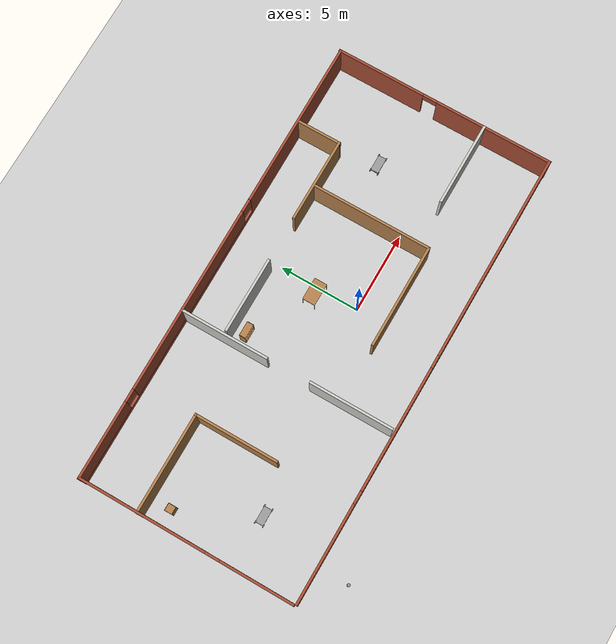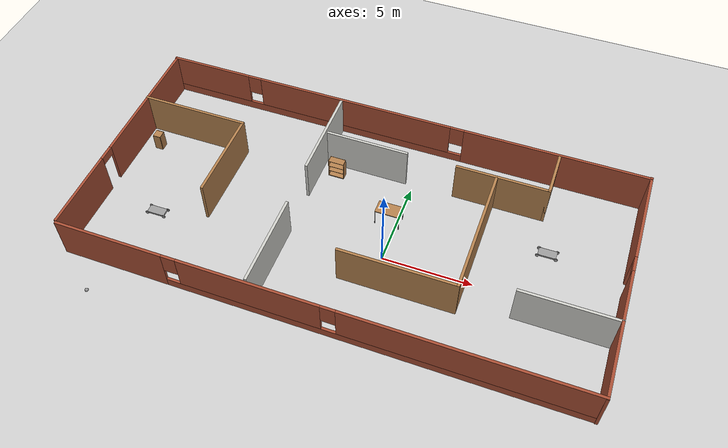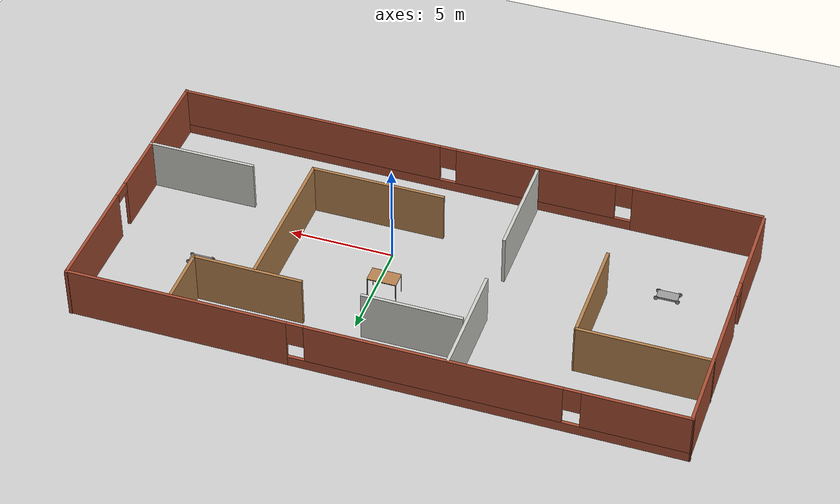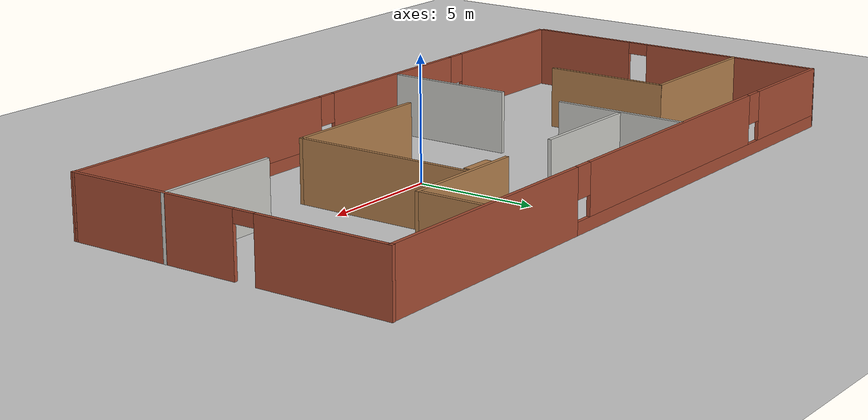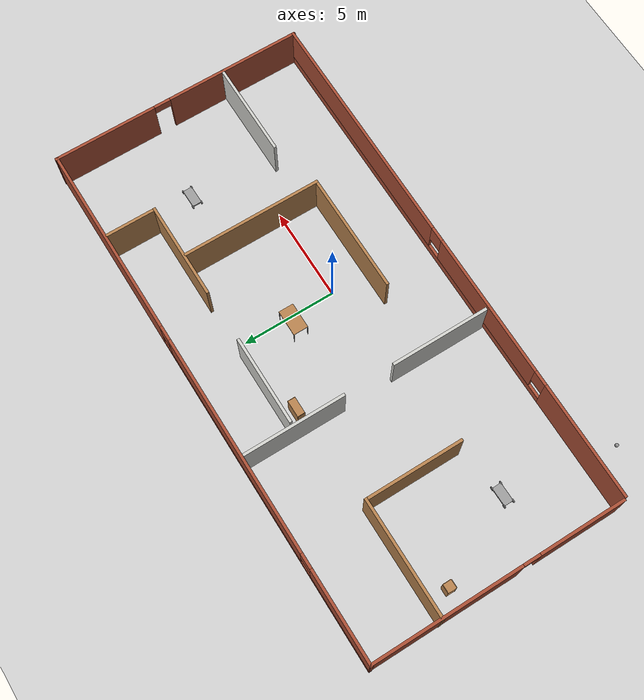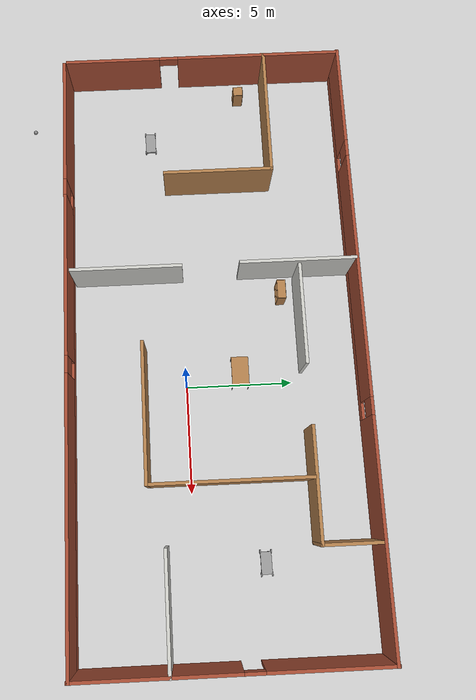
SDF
<sdf version="1.6">
 <world name="default">
  <plugin name="welcome_message" filename="./libwelcome_message.so"/>
  <light name="sun" type="directional">
   <pose>0 0 10 0 -0 0</pose>
   <diffuse>0.8 0.8 0.8 1</diffuse>
   <specular>0.1 0.1 0.1 1</specular>
   <attenuation>
    <range>1000</range>
    <constant>0.9</constant>
    <linear>0.01</linear>
    <quadratic>0.001</quadratic>
   </attenuation>
   <direction>-0.5 0.5 -1</direction>
  </light>
  <model name="ground_plane">
   <static>1</static>
   <link name="link">
    <collision name="collision">
     <geometry><plane><normal>0 0 1</normal><size>100 100</size></plane></geometry>
     <surface><friction><ode><mu>100</mu><mu2>50</mu2></ode></friction></surface>
    </collision>
    <visual name="visual">
     <cast_shadows>0</cast_shadows>
     <geometry><plane><normal>0 0 1</normal><size>100 100</size></plane></geometry>
     <material>
      <script><uri>file://media/materials/scripts/gazebo.material</uri><name>Gazebo/Grey</name></script>
     </material>
    </visual>
   </link>
  </model>
  <gravity>0 0 -9.8</gravity>
  <magnetic_field>6e-06 2.3e-05 -4.2e-05</magnetic_field>
  <atmosphere type="adiabatic"/>
  <physics name="default_physics" default="0" type="ode">
   <max_step_size>0.001</max_step_size>
   <real_time_factor>1</real_time_factor>
   <real_time_update_rate>1000</real_time_update_rate>
  </physics>
  <scene><ambient>0.4 0.4 0.4 1</ambient><background>0.7 0.7 0.7 1</background><shadows>1</shadows></scene>
  <spherical_coordinates>
   <surface_model>EARTH_WGS84</surface_model>
   <latitude_deg>0</latitude_deg>
   <longitude_deg>0</longitude_deg>
   <elevation>0</elevation>
   <heading_deg>0</heading_deg>
  </spherical_coordinates>
  <model name="wall2">
   <pose>-1.83862 1.41721 0 0 -0 0</pose>
   <link name="Wall_0">
    <pose>0.0701 -6.80102 0 0 0 -0.002151</pose>
    <visual name="Wall_0_Visual_0">
     <pose>-11.2183 0 1.25 0 -0 0</pose>
     <geometry><box><size>6.15515 0.15 2.5</size></box></geometry>
     <material>
      <script><uri>file://media/materials/scripts/gazebo.material</uri><name>Gazebo/Bricks</name></script>
      <ambient>1 1 1 1</ambient>
     </material>
    </visual>
    <collision name="Wall_0_Collision_0">
     <geometry><box><size>6.15515 0.15 2.5</size></box></geometry>
     <pose>-11.2183 0 1.25 0 -0 0</pose>
    </collision>
    <visual name="Wall_0_Visual_1">
     <pose>3.07757 0 0.25 0 -0 0</pose>
     <geometry><box><size>22.4367 0.15 0.5</size></box></geometry>
     <material>
      <script><uri>file://media/materials/scripts/gazebo.material</uri><name>Gazebo/Bricks</name></script>
      <ambient>1 1 1 1</ambient>
     </material>
    </visual>
    <collision name="Wall_0_Collision_1">
     <geometry><box><size>22.4367 0.15 0.5</size></box></geometry>
     <pose>3.07757 0 0.25 0 -0 0</pose>
    </collision>
    <visual name="Wall_0_Visual_2">
     <pose>-3.44996 0 1.5 0 -0 0</pose>
     <geometry><box><size>7.78163 0.15 2</size></box></geometry>
     <material>
      <script><uri>file://media/materials/scripts/gazebo.material</uri><name>Gazebo/Bricks</name></script>
      <ambient>1 1 1 1</ambient>
     </material>
    </visual>
    <collision name="Wall_0_Collision_2">
     <geometry><box><size>7.78163 0.15 2</size></box></geometry>
     <pose>-3.44996 0 1.5 0 -0 0</pose>
    </collision>
    <visual name="Wall_0_Visual_3">
     <pose>7.76839 0 1.5 0 -0 0</pose>
     <geometry><box><size>13.0551 0.15 2</size></box></geometry>
     <material>
      <script><uri>file://media/materials/scripts/gazebo.material</uri><name>Gazebo/Bricks</name></script>
      <ambient>1 1 1 1</ambient>
     </material>
    </visual>
    <collision name="Wall_0_Collision_3">
     <geometry><box><size>13.0551 0.15 2</size></box></geometry>
     <pose>7.76839 0 1.5 0 -0 0</pose>
    </collision>
    <visual name="Wall_0_Visual_4">
     <pose>-7.74077 0 1.9 0 -0 0</pose>
     <geometry><box><size>0.8 0.15 1.2</size></box></geometry>
     <material>
      <script><uri>file://media/materials/scripts/gazebo.material</uri><name>Gazebo/Bricks</name></script>
      <ambient>1 1 1 1</ambient>
     </material>
    </visual>
    <collision name="Wall_0_Collision_4">
     <geometry><box><size>0.8 0.15 1.2</size></box></geometry>
     <pose>-7.74077 0 1.9 0 -0 0</pose>
    </collision>
    <visual name="Wall_0_Visual_5">
     <pose>0.840861 0 1.9 0 -0 0</pose>
     <geometry><box><size>0.8 0.15 1.2</size></box></geometry>
     <material>
      <script><uri>file://media/materials/scripts/gazebo.material</uri><name>Gazebo/Bricks</name></script>
      <ambient>1 1 1 1</ambient>
     </material>
    </visual>
    <collision name="Wall_0_Collision_5">
     <geometry><box><size>0.8 0.15 1.2</size></box></geometry>
     <pose>0.840861 0 1.9 0 -0 0</pose>
    </collision>
   </link>
   <link name="Wall_1">
    <pose>14.2757 0 0 0 -0 1.57302</pose>
    <visual name="Wall_1_Visual_0">
     <pose>-3.24103 0 1.25 0 -0 0</pose>
     <geometry><box><size>7.39238 0.15 2.5</size></box></geometry>
     <material>
      <script><uri>file://media/materials/scripts/gazebo.material</uri><name>Gazebo/Bricks</name></script>
      <ambient>1 1 1 1</ambient>
     </material>
    </visual>
    <collision name="Wall_1_Collision_0">
     <geometry><box><size>7.39238 0.15 2.5</size></box></geometry>
     <pose>-3.24103 0 1.25 0 -0 0</pose>
    </collision>
    <visual name="Wall_1_Visual_1">
     <pose>4.14619 0 1.25 0 -0 0</pose>
     <geometry><box><size>5.58206 0.15 2.5</size></box></geometry>
     <material>
      <script><uri>file://media/materials/scripts/gazebo.material</uri><name>Gazebo/Bricks</name></script>
      <ambient>1 1 1 1</ambient>
     </material>
    </visual>
    <collision name="Wall_1_Collision_1">
     <geometry><box><size>5.58206 0.15 2.5</size></box></geometry>
     <pose>4.14619 0 1.25 0 -0 0</pose>
    </collision>
    <visual name="Wall_1_Visual_2">
     <pose>0.905161 0 2.25 0 -0 0</pose>
     <geometry><box><size>0.9 0.15 0.5</size></box></geometry>
     <material>
      <script><uri>file://media/materials/scripts/gazebo.material</uri><name>Gazebo/Bricks</name></script>
      <ambient>1 1 1 1</ambient>
     </material>
    </visual>
    <collision name="Wall_1_Collision_2">
     <geometry><box><size>0.9 0.15 0.5</size></box></geometry>
     <pose>0.905161 0 2.25 0 -0 0</pose>
    </collision>
   </link>
   <link name="Wall_10">
    <collision name="Wall_10_Collision">
     <geometry><box><size>5.25 0.15 2.5</size></box></geometry>
     <pose>0 0 1.25 0 -0 0</pose>
    </collision>
    <visual name="Wall_10_Visual">
     <pose>0 0 1.25 0 -0 0</pose>
     <geometry><box><size>5.25 0.15 2.5</size></box></geometry>
     <material>
      <script><uri>file://media/materials/scripts/gazebo.material</uri><name>Gazebo/CeilingTiled</name></script>
      <ambient>1 0.764706 0.305882 1</ambient>
     </material>
    </visual>
    <pose>-3.51097 -4.01292 0 0 0 -1.5708</pose>
   </link>
   <link name="Wall_12">
    <collision name="Wall_12_Collision">
     <geometry><box><size>4.75 0.15 2.5</size></box></geometry>
     <pose>0 0 1.25 0 -0 0</pose>
    </collision>
    <visual name="Wall_12_Visual">
     <pose>0 0 1.25 0 -0 0</pose>
     <geometry><box><size>4.75 0.15 2.5</size></box></geometry>
     <material>
      <script><uri>file://media/materials/scripts/gazebo.material</uri><name>Gazebo/CeilingTiled</name></script>
      <ambient>1 1 1 1</ambient>
     </material>
    </visual>
    <pose>-0.999901 4.06014 0 0 -0 0</pose>
   </link>
   <link name="Wall_14">
    <collision name="Wall_14_Collision">
     <geometry><box><size>5.25 0.15 2.5</size></box></geometry>
     <pose>0 0 1.25 0 -0 0</pose>
    </collision>
    <visual name="Wall_14_Visual">
     <pose>0 0 1.25 0 -0 0</pose>
     <geometry><box><size>5.25 0.15 2.5</size></box></geometry>
     <material>
      <script><uri>file://media/materials/scripts/gazebo.material</uri><name>Gazebo/Wood</name></script>
      <ambient>1 1 1 1</ambient>
     </material>
    </visual>
    <pose>6.74318 4.09532 0 0 -0 0</pose>
   </link>
   <link name="Wall_16">
    <collision name="Wall_16_Collision">
     <geometry><box><size>2.75 0.15 2.5</size></box></geometry>
     <pose>0 0 1.25 0 -0 0</pose>
    </collision>
    <visual name="Wall_16_Visual">
     <pose>0 0 1.25 0 -0 0</pose>
     <geometry><box><size>2.75 0.15 2.5</size></box></geometry>
     <material>
      <script><uri>file://media/materials/scripts/gazebo.material</uri><name>Gazebo/Wood</name></script>
      <ambient>1 1 1 1</ambient>
     </material>
    </visual>
    <pose>9.29317 5.39532 0 0 -0 1.5708</pose>
   </link>
   <link name="Wall_18">
    <collision name="Wall_18_Collision">
     <geometry><box><size>7.5 0.15 2.5</size></box></geometry>
     <pose>0 0 1.25 0 -0 0</pose>
    </collision>
    <visual name="Wall_18_Visual">
     <pose>0 0 1.25 0 -0 0</pose>
     <geometry><box><size>7.5 0.15 2.5</size></box></geometry>
     <material>
      <script><uri>file://media/materials/scripts/gazebo.material</uri><name>Gazebo/Wood</name></script>
      <ambient>1 1 1 1</ambient>
     </material>
    </visual>
    <pose>6.40944 0.314786 0 0 0 -1.5708</pose>
   </link>
   <link name="Wall_2">
    <pose>-0.015256 6.78573 0 0 0 -3.13838</pose>
    <visual name="Wall_2_Visual_0">
     <pose>-9.09297 0 1.25 0 -0 0</pose>
     <geometry><box><size>10.5155 0.15 2.5</size></box></geometry>
     <material>
      <script><uri>file://media/materials/scripts/gazebo.material</uri><name>Gazebo/Bricks</name></script>
      <ambient>1 1 1 1</ambient>
     </material>
    </visual>
    <collision name="Wall_2_Collision_0">
     <geometry><box><size>10.5155 0.15 2.5</size></box></geometry>
     <pose>-9.09297 0 1.25 0 -0 0</pose>
    </collision>
    <visual name="Wall_2_Visual_1">
     <pose>5.25776 0 0.25 0 -0 0</pose>
     <geometry><box><size>18.1859 0.15 0.5</size></box></geometry>
     <material>
      <script><uri>file://media/materials/scripts/gazebo.material</uri><name>Gazebo/Bricks</name></script>
      <ambient>1 1 1 1</ambient>
     </material>
    </visual>
    <collision name="Wall_2_Collision_1">
     <geometry><box><size>18.1859 0.15 0.5</size></box></geometry>
     <pose>5.25776 0 0.25 0 -0 0</pose>
    </collision>
    <visual name="Wall_2_Visual_2">
     <pose>2.81619 0 1.5 0 -0 0</pose>
     <geometry><box><size>11.7028 0.15 2</size></box></geometry>
     <material>
      <script><uri>file://media/materials/scripts/gazebo.material</uri><name>Gazebo/Bricks</name></script>
      <ambient>1 1 1 1</ambient>
     </material>
    </visual>
    <collision name="Wall_2_Collision_2">
     <geometry><box><size>11.7028 0.15 2</size></box></geometry>
     <pose>2.81619 0 1.5 0 -0 0</pose>
    </collision>
    <visual name="Wall_2_Visual_3">
     <pose>11.9092 0 1.5 0 -0 0</pose>
     <geometry><box><size>4.88314 0.15 2</size></box></geometry>
     <material>
      <script><uri>file://media/materials/scripts/gazebo.material</uri><name>Gazebo/Bricks</name></script>
      <ambient>1 1 1 1</ambient>
     </material>
    </visual>
    <collision name="Wall_2_Collision_3">
     <geometry><box><size>4.88314 0.15 2</size></box></geometry>
     <pose>11.9092 0 1.5 0 -0 0</pose>
    </collision>
    <visual name="Wall_2_Visual_4">
     <pose>-3.43521 0 1.9 0 -0 0</pose>
     <geometry><box><size>0.8 0.15 1.2</size></box></geometry>
     <material>
      <script><uri>file://media/materials/scripts/gazebo.material</uri><name>Gazebo/Bricks</name></script>
      <ambient>1 1 1 1</ambient>
     </material>
    </visual>
    <collision name="Wall_2_Collision_4">
     <geometry><box><size>0.8 0.15 1.2</size></box></geometry>
     <pose>-3.43521 0 1.9 0 -0 0</pose>
    </collision>
    <visual name="Wall_2_Visual_5">
     <pose>9.06759 0 1.9 0 -0 0</pose>
     <geometry><box><size>0.8 0.15 1.2</size></box></geometry>
     <material>
      <script><uri>file://media/materials/scripts/gazebo.material</uri><name>Gazebo/Bricks</name></script>
      <ambient>1 1 1 1</ambient>
     </material>
    </visual>
    <collision name="Wall_2_Collision_5">
     <geometry><box><size>0.8 0.15 1.2</size></box></geometry>
     <pose>9.06759 0 1.9 0 -0 0</pose>
    </collision>
   </link>
   <link name="Wall_20">
    <collision name="Wall_20_Collision">
     <geometry><box><size>6.5 0.15 2.5</size></box></geometry>
     <pose>0 0 1.25 0 -0 0</pose>
    </collision>
    <visual name="Wall_20_Visual">
     <pose>0 0 1.25 0 -0 0</pose>
     <geometry><box><size>6.5 0.15 2.5</size></box></geometry>
     <material>
      <script><uri>file://media/materials/scripts/gazebo.material</uri><name>Gazebo/Wood</name></script>
      <ambient>1 1 1 1</ambient>
     </material>
    </visual>
    <pose>3.23444 -3.36021 0 0 -0 3.14159</pose>
   </link>
   <link name="Wall_22">
    <collision name="Wall_22_Collision">
     <geometry><box><size>5.25 0.15 2.5</size></box></geometry>
     <pose>0 0 1.25 0 -0 0</pose>
    </collision>
    <visual name="Wall_22_Visual">
     <pose>0 0 1.25 0 -0 0</pose>
     <geometry><box><size>5.25 0.15 2.5</size></box></geometry>
     <material>
      <script><uri>file://media/materials/scripts/gazebo.material</uri><name>Gazebo/CeilingTiled</name></script>
      <ambient>1 1 1 1</ambient>
     </material>
    </visual>
    <pose>11.7395 -2.62382 0 0 -0 3.14159</pose>
   </link>
   <link name="Wall_3">
    <pose>-14.2603 0.06484 0 0 0 -1.5708</pose>
    <visual name="Wall_3_Visual_0">
     <pose>-2.75484 0 1.25 0 -0 0</pose>
     <geometry><box><size>7.99032 0.15 2.5</size></box></geometry>
     <material>
      <script><uri>file://media/materials/scripts/gazebo.material</uri><name>Gazebo/Bricks</name></script>
      <ambient>1 1 1 1</ambient>
     </material>
    </visual>
    <collision name="Wall_3_Collision_0">
     <geometry><box><size>7.99032 0.15 2.5</size></box></geometry>
     <pose>-2.75484 0 1.25 0 -0 0</pose>
    </collision>
    <visual name="Wall_3_Visual_1">
     <pose>4.44516 0 1.25 0 -0 0</pose>
     <geometry><box><size>4.60968 0.15 2.5</size></box></geometry>
     <material>
      <script><uri>file://media/materials/scripts/gazebo.material</uri><name>Gazebo/Bricks</name></script>
      <ambient>1 1 1 1</ambient>
     </material>
    </visual>
    <collision name="Wall_3_Collision_1">
     <geometry><box><size>4.60968 0.15 2.5</size></box></geometry>
     <pose>4.44516 0 1.25 0 -0 0</pose>
    </collision>
    <visual name="Wall_3_Visual_2">
     <pose>1.69032 0 2.25 0 -0 0</pose>
     <geometry><box><size>0.9 0.15 0.5</size></box></geometry>
     <material>
      <script><uri>file://media/materials/scripts/gazebo.material</uri><name>Gazebo/Bricks</name></script>
      <ambient>1 1 1 1</ambient>
     </material>
    </visual>
    <collision name="Wall_3_Collision_2">
     <geometry><box><size>0.9 0.15 0.5</size></box></geometry>
     <pose>1.69032 0 2.25 0 -0 0</pose>
    </collision>
   </link>
   <link name="Wall_5">
    <collision name="Wall_5_Collision">
     <geometry><box><size>6.25 0.15 2.5</size></box></geometry>
     <pose>0 0 1.25 0 -0 0</pose>
    </collision>
    <visual name="Wall_5_Visual">
     <pose>0 0 1.25 0 -0 0</pose>
     <geometry><box><size>6.25 0.15 2.5</size></box></geometry>
     <material>
      <script><uri>file://media/materials/scripts/gazebo.material</uri><name>Gazebo/Wood</name></script>
      <ambient>0.435294 0.796078 0.67451 1</ambient>
     </material>
    </visual>
    <pose>-11.2257 3.07514 0 0 -0 0</pose>
   </link>
   <link name="Wall_6">
    <collision name="Wall_6_Collision">
     <geometry><box><size>5.25 0.15 2.5</size></box></geometry>
     <pose>0 0 1.25 0 -0 0</pose>
    </collision>
    <visual name="Wall_6_Visual">
     <pose>0 0 1.25 0 -0 0</pose>
     <geometry><box><size>5.25 0.15 2.5</size></box></geometry>
     <material>
      <script><uri>file://media/materials/scripts/gazebo.material</uri><name>Gazebo/Wood</name></script>
      <ambient>0.435294 0.796078 0.67451 1</ambient>
     </material>
    </visual>
    <pose>-8.17568 0.525138 0 0 0 -1.5708</pose>
   </link>
   <link name="Wall_8">
    <collision name="Wall_8_Collision">
     <geometry><box><size>5.5 0.15 2.5</size></box></geometry>
     <pose>0 0 1.25 0 -0 0</pose>
    </collision>
    <visual name="Wall_8_Visual">
     <pose>0 0 1.25 0 -0 0</pose>
     <geometry><box><size>5.5 0.15 2.5</size></box></geometry>
     <material>
      <script><uri>file://media/materials/scripts/gazebo.material</uri><name>Gazebo/CeilingTiled</name></script>
      <ambient>1 1 1 1</ambient>
     </material>
    </visual>
    <pose>-3.54615 4.02355 0 0 0 -1.5708</pose>
   </link>
   <static>1</static>
  </model>
  <model name="robot2">
   <pose>-12.7775 -1.32703 0.100002 0 -0 0.011114</pose>
   <static>0</static>
   <link name="link_0">
    <pose>0 0 0.025 0 -0 0</pose>
    <inertial>
     <mass>5</mass>
     <inertia>
      <ixx>0.147117</ixx>
      <ixy>0</ixy>
      <ixz>0</ixz>
      <iyy>0.334951</iyy>
      <iyz>0</iyz>
      <izz>0.397834</izz>
     </inertia>
     <pose>0 0 0.025 0 -0 0</pose>
    </inertial>
    <visual name="visual">
     <geometry><box><size>1 0.5 0.1</size></box></geometry>
     <material>
      <lighting>1</lighting>
      <script><uri>file://media/materials/scripts/gazebo.material</uri><name>Gazebo/Grey</name></script>
      <ambient>0.3 0.3 0.3 1</ambient>
      <diffuse>0.7 0.7 0.7 1</diffuse>
      <specular>0.01 0.01 0.01 1</specular>
      <emissive>0 0 0 1</emissive>
      <shader type="vertex"><normal_map>__default__</normal_map></shader>
     </material>
    </visual>
    <collision name="collision">
     <geometry><box><size>1 0.5 0.1</size></box></geometry>
     <surface>
      <friction>
       <ode><mu>1</mu><mu2>1</mu2><fdir1>0 0 0</fdir1><slip1>0</slip1><slip2>0</slip2></ode>
       <torsional>
        <coefficient>1</coefficient>
        <patch_radius>0</patch_radius>
        <surface_radius>0</surface_radius>
        <use_patch_radius>1</use_patch_radius>
        <ode><slip>0</slip></ode>
       </torsional>
      </friction>
      <bounce><restitution_coefficient>0</restitution_coefficient><threshold>1e+06</threshold></bounce>
      <contact>
       <collide_without_contact>0</collide_without_contact>
       <collide_without_contact_bitmask>1</collide_without_contact_bitmask>
       <collide_bitmask>1</collide_bitmask>
       <ode>
        <soft_cfm>0</soft_cfm>
        <soft_erp>0.2</soft_erp>
        <kp>1e+13</kp>
        <kd>1</kd>
        <max_vel>0.01</max_vel>
        <min_depth>0</min_depth>
       </ode>
       <bullet>
        <split_impulse>1</split_impulse>
        <split_impulse_penetration_threshold>-0.01</split_impulse_penetration_threshold>
        <soft_cfm>0</soft_cfm>
        <soft_erp>0.2</soft_erp>
        <kp>1e+13</kp>
        <kd>1</kd>
       </bullet>
      </contact>
     </surface>
    </collision>
   </link>
   <link name="link_1">
    <pose>0.5 -0.25 0 1.5707 -0 0</pose>
    <inertial>
     <mass>0.2</mass>
     <inertia>
      <ixx>0.00524062</ixx>
      <iyy>0.00524062</iyy>
      <izz>0.009075</izz>
      <ixy>0</ixy>
      <ixz>0</ixz>
      <iyz>0</iyz>
     </inertia>
     <pose>0.5 -0.25 0 1.5707 -0 0</pose>
    </inertial>
    <visual name="visual">
     <geometry><cylinder><radius>0.1</radius><length>0.05</length></cylinder></geometry>
     <material>
      <lighting>1</lighting>
      <script><uri>file://media/materials/scripts/gazebo.material</uri><name>Gazebo/Grey</name></script>
      <ambient>0.3 0.3 0.3 1</ambient>
      <diffuse>0.7 0.7 0.7 1</diffuse>
      <specular>0.01 0.01 0.01 1</specular>
      <emissive>0 0 0 1</emissive>
      <shader type="vertex"><normal_map>__default__</normal_map></shader>
     </material>
    </visual>
    <collision name="collision">
     <geometry><cylinder><radius>0.1</radius><length>0.05</length></cylinder></geometry>
     <surface>
      <friction>
       <ode><mu>1</mu><mu2>1</mu2><fdir1>0 0 0</fdir1><slip1>0</slip1><slip2>0</slip2></ode>
       <torsional>
        <coefficient>1</coefficient>
        <patch_radius>0</patch_radius>
        <surface_radius>0</surface_radius>
        <use_patch_radius>1</use_patch_radius>
        <ode><slip>0</slip></ode>
       </torsional>
      </friction>
      <bounce><restitution_coefficient>0</restitution_coefficient><threshold>1e+06</threshold></bounce>
      <contact>
       <collide_without_contact>0</collide_without_contact>
       <collide_without_contact_bitmask>1</collide_without_contact_bitmask>
       <collide_bitmask>1</collide_bitmask>
       <ode>
        <soft_cfm>0</soft_cfm>
        <soft_erp>0.2</soft_erp>
        <kp>1e+13</kp>
        <kd>1</kd>
        <max_vel>0.01</max_vel>
        <min_depth>0</min_depth>
       </ode>
       <bullet>
        <split_impulse>1</split_impulse>
        <split_impulse_penetration_threshold>-0.01</split_impulse_penetration_threshold>
        <soft_cfm>0</soft_cfm>
        <soft_erp>0.2</soft_erp>
        <kp>1e+13</kp>
        <kd>1</kd>
       </bullet>
      </contact>
     </surface>
    </collision>
   </link>
   <link name="link_1_clone">
    <pose>0.5 0.25 0 1.5707 -0 0</pose>
    <inertial>
     <mass>0.2</mass>
     <inertia>
      <ixx>0.00524062</ixx>
      <iyy>0.00524062</iyy>
      <izz>0.009075</izz>
      <ixy>0</ixy>
      <ixz>0</ixz>
      <iyz>0</iyz>
     </inertia>
     <pose>0.5 0.25 0 1.5707 -0 0</pose>
    </inertial>
    <visual name="visual">
     <geometry><cylinder><radius>0.1</radius><length>0.05</length></cylinder></geometry>
     <material>
      <lighting>1</lighting>
      <script><uri>file://media/materials/scripts/gazebo.material</uri><name>Gazebo/Grey</name></script>
      <ambient>0.3 0.3 0.3 1</ambient>
      <diffuse>0.7 0.7 0.7 1</diffuse>
      <specular>0.01 0.01 0.01 1</specular>
      <emissive>0 0 0 1</emissive>
      <shader type="vertex"><normal_map>__default__</normal_map></shader>
     </material>
    </visual>
    <collision name="collision">
     <geometry><cylinder><radius>0.1</radius><length>0.05</length></cylinder></geometry>
     <surface>
      <friction>
       <ode><mu>1</mu><mu2>1</mu2><fdir1>0 0 0</fdir1><slip1>0</slip1><slip2>0</slip2></ode>
       <torsional>
        <coefficient>1</coefficient>
        <patch_radius>0</patch_radius>
        <surface_radius>0</surface_radius>
        <use_patch_radius>1</use_patch_radius>
        <ode><slip>0</slip></ode>
       </torsional>
      </friction>
      <bounce><restitution_coefficient>0</restitution_coefficient><threshold>1e+06</threshold></bounce>
      <contact>
       <collide_without_contact>0</collide_without_contact>
       <collide_without_contact_bitmask>1</collide_without_contact_bitmask>
       <collide_bitmask>1</collide_bitmask>
       <ode>
        <soft_cfm>0</soft_cfm>
        <soft_erp>0.2</soft_erp>
        <kp>1e+13</kp>
        <kd>1</kd>
        <max_vel>0.01</max_vel>
        <min_depth>0</min_depth>
       </ode>
       <bullet>
        <split_impulse>1</split_impulse>
        <split_impulse_penetration_threshold>-0.01</split_impulse_penetration_threshold>
        <soft_cfm>0</soft_cfm>
        <soft_erp>0.2</soft_erp>
        <kp>1e+13</kp>
        <kd>1</kd>
       </bullet>
      </contact>
     </surface>
    </collision>
   </link>
   <link name="link_2">
    <pose>-0.5 -0.25 0 1.5707 -0 0</pose>
    <inertial>
     <mass>0.2</mass>
     <inertia>
      <ixx>0.00524062</ixx>
      <iyy>0.00524062</iyy>
      <izz>0.009075</izz>
      <ixy>0</ixy>
      <ixz>0</ixz>
      <iyz>0</iyz>
     </inertia>
     <pose>-0.5 -0.25 0 1.5707 -0 0</pose>
    </inertial>
    <visual name="visual">
     <geometry><cylinder><radius>0.1</radius><length>0.05</length></cylinder></geometry>
     <material>
      <lighting>1</lighting>
      <script><uri>file://media/materials/scripts/gazebo.material</uri><name>Gazebo/Grey</name></script>
      <ambient>0.3 0.3 0.3 1</ambient>
      <diffuse>0.7 0.7 0.7 1</diffuse>
      <specular>0.01 0.01 0.01 1</specular>
      <emissive>0 0 0 1</emissive>
      <shader type="vertex"><normal_map>__default__</normal_map></shader>
     </material>
    </visual>
    <collision name="collision">
     <geometry><cylinder><radius>0.1</radius><length>0.05</length></cylinder></geometry>
     <surface>
      <friction>
       <ode><mu>1</mu><mu2>1</mu2><fdir1>0 0 0</fdir1><slip1>0</slip1><slip2>0</slip2></ode>
       <torsional>
        <coefficient>1</coefficient>
        <patch_radius>0</patch_radius>
        <surface_radius>0</surface_radius>
        <use_patch_radius>1</use_patch_radius>
        <ode><slip>0</slip></ode>
       </torsional>
      </friction>
      <bounce><restitution_coefficient>0</restitution_coefficient><threshold>1e+06</threshold></bounce>
      <contact>
       <collide_without_contact>0</collide_without_contact>
       <collide_without_contact_bitmask>1</collide_without_contact_bitmask>
       <collide_bitmask>1</collide_bitmask>
       <ode>
        <soft_cfm>0</soft_cfm>
        <soft_erp>0.2</soft_erp>
        <kp>1e+13</kp>
        <kd>1</kd>
        <max_vel>0.01</max_vel>
        <min_depth>0</min_depth>
       </ode>
       <bullet>
        <split_impulse>1</split_impulse>
        <split_impulse_penetration_threshold>-0.01</split_impulse_penetration_threshold>
        <soft_cfm>0</soft_cfm>
        <soft_erp>0.2</soft_erp>
        <kp>1e+13</kp>
        <kd>1</kd>
       </bullet>
      </contact>
     </surface>
    </collision>
   </link>
   <link name="link_2_clone">
    <pose>-0.5 0.25 0 1.5707 -0 0</pose>
    <inertial>
     <mass>0.2</mass>
     <inertia>
      <ixx>0.00524062</ixx>
      <iyy>0.00524062</iyy>
      <izz>0.009075</izz>
      <ixy>0</ixy>
      <ixz>0</ixz>
      <iyz>0</iyz>
     </inertia>
     <pose>-0.5 0.25 0 1.5707 -0 0</pose>
    </inertial>
    <visual name="visual">
     <geometry><cylinder><radius>0.1</radius><length>0.05</length></cylinder></geometry>
     <material>
      <lighting>1</lighting>
      <script><uri>file://media/materials/scripts/gazebo.material</uri><name>Gazebo/Grey</name></script>
      <ambient>0.3 0.3 0.3 1</ambient>
      <diffuse>0.7 0.7 0.7 1</diffuse>
      <specular>0.01 0.01 0.01 1</specular>
      <emissive>0 0 0 1</emissive>
      <shader type="vertex"><normal_map>__default__</normal_map></shader>
     </material>
    </visual>
    <collision name="collision">
     <geometry><cylinder><radius>0.1</radius><length>0.05</length></cylinder></geometry>
     <surface>
      <friction>
       <ode><mu>1</mu><mu2>1</mu2><fdir1>0 0 0</fdir1><slip1>0</slip1><slip2>0</slip2></ode>
       <torsional>
        <coefficient>1</coefficient>
        <patch_radius>0</patch_radius>
        <surface_radius>0</surface_radius>
        <use_patch_radius>1</use_patch_radius>
        <ode><slip>0</slip></ode>
       </torsional>
      </friction>
      <bounce><restitution_coefficient>0</restitution_coefficient><threshold>1e+06</threshold></bounce>
      <contact>
       <collide_without_contact>0</collide_without_contact>
       <collide_without_contact_bitmask>1</collide_without_contact_bitmask>
       <collide_bitmask>1</collide_bitmask>
       <ode>
        <soft_cfm>0</soft_cfm>
        <soft_erp>0.2</soft_erp>
        <kp>1e+13</kp>
        <kd>1</kd>
        <max_vel>0.01</max_vel>
        <min_depth>0</min_depth>
       </ode>
       <bullet>
        <split_impulse>1</split_impulse>
        <split_impulse_penetration_threshold>-0.01</split_impulse_penetration_threshold>
        <soft_cfm>0</soft_cfm>
        <soft_erp>0.2</soft_erp>
        <kp>1e+13</kp>
        <kd>1</kd>
       </bullet>
      </contact>
     </surface>
    </collision>
   </link>
   <joint name="link_0_JOINT_0" type="revolute">
    <parent>link_0</parent>
    <child>link_1</child>
    <axis>
     <xyz>0 1 0</xyz>
     <use_parent_model_frame>1</use_parent_model_frame>
     <limit>
      <lower>-1.79769e+308</lower>
      <upper>1.79769e+308</upper>
      <effort>-1</effort>
      <velocity>-1</velocity>
     </limit>
     <dynamics>
      <spring_reference>0</spring_reference>
      <spring_stiffness>0</spring_stiffness>
      <damping>0</damping>
     </dynamics>
    </axis>
    <physics>
     <ode><limit><cfm>0</cfm><erp>0.2</erp></limit><suspension><cfm>0</cfm><erp>0.2</erp></suspension></ode>
    </physics>
   </joint>
   <joint name="link_0_JOINT_1" type="revolute">
    <parent>link_0</parent>
    <child>link_1_clone</child>
    <axis>
     <xyz>0 1 0</xyz>
     <use_parent_model_frame>1</use_parent_model_frame>
     <limit>
      <lower>-1.79769e+308</lower>
      <upper>1.79769e+308</upper>
      <effort>-1</effort>
      <velocity>-1</velocity>
     </limit>
     <dynamics>
      <spring_reference>0</spring_reference>
      <spring_stiffness>0</spring_stiffness>
      <damping>0</damping>
     </dynamics>
    </axis>
    <physics>
     <ode><limit><cfm>0</cfm><erp>0.2</erp></limit><suspension><cfm>0</cfm><erp>0.2</erp></suspension></ode>
    </physics>
   </joint>
   <joint name="link_0_JOINT_2" type="revolute">
    <parent>link_0</parent>
    <child>link_2</child>
    <axis>
     <xyz>0 1 0</xyz>
     <use_parent_model_frame>1</use_parent_model_frame>
     <limit>
      <lower>-1.79769e+308</lower>
      <upper>1.79769e+308</upper>
      <effort>-1</effort>
      <velocity>-1</velocity>
     </limit>
     <dynamics>
      <spring_reference>0</spring_reference>
      <spring_stiffness>0</spring_stiffness>
      <damping>0</damping>
     </dynamics>
    </axis>
    <physics>
     <ode><limit><cfm>0</cfm><erp>0.2</erp></limit><suspension><cfm>0</cfm><erp>0.2</erp></suspension></ode>
    </physics>
   </joint>
   <joint name="link_0_JOINT_3" type="revolute">
    <parent>link_0</parent>
    <child>link_2_clone</child>
    <axis>
     <xyz>0 1 0</xyz>
     <use_parent_model_frame>1</use_parent_model_frame>
     <limit>
      <lower>-1.79769e+308</lower>
      <upper>1.79769e+308</upper>
      <effort>-1</effort>
      <velocity>-1</velocity>
     </limit>
     <dynamics>
      <spring_reference>0</spring_reference>
      <spring_stiffness>0</spring_stiffness>
      <damping>0</damping>
     </dynamics>
    </axis>
    <physics>
     <ode><limit><cfm>0</cfm><erp>0.2</erp></limit><suspension><cfm>0</cfm><erp>0.2</erp></suspension></ode>
    </physics>
   </joint>
   <static>0</static>
  </model>
  <model name="robot2_0">
   <pose>8.23339 3.2576 0.100001 0 -0 0.010744</pose>
   <static>0</static>
   <link name="link_0">
    <pose>0 0 0.025 0 -0 0</pose>
    <inertial>
     <mass>5</mass>
     <inertia>
      <ixx>0.147117</ixx>
      <ixy>0</ixy>
      <ixz>0</ixz>
      <iyy>0.334951</iyy>
      <iyz>0</iyz>
      <izz>0.397834</izz>
     </inertia>
     <pose>0 0 0.025 0 -0 0</pose>
    </inertial>
    <visual name="visual">
     <geometry><box><size>1 0.5 0.1</size></box></geometry>
     <material>
      <lighting>1</lighting>
      <script><uri>file://media/materials/scripts/gazebo.material</uri><name>Gazebo/Grey</name></script>
      <ambient>0.3 0.3 0.3 1</ambient>
      <diffuse>0.7 0.7 0.7 1</diffuse>
      <specular>0.01 0.01 0.01 1</specular>
      <emissive>0 0 0 1</emissive>
      <shader type="vertex"><normal_map>__default__</normal_map></shader>
     </material>
    </visual>
    <collision name="collision">
     <geometry><box><size>1 0.5 0.1</size></box></geometry>
     <surface>
      <friction>
       <ode><mu>1</mu><mu2>1</mu2><fdir1>0 0 0</fdir1><slip1>0</slip1><slip2>0</slip2></ode>
       <torsional>
        <coefficient>1</coefficient>
        <patch_radius>0</patch_radius>
        <surface_radius>0</surface_radius>
        <use_patch_radius>1</use_patch_radius>
        <ode><slip>0</slip></ode>
       </torsional>
      </friction>
      <bounce><restitution_coefficient>0</restitution_coefficient><threshold>1e+06</threshold></bounce>
      <contact>
       <collide_without_contact>0</collide_without_contact>
       <collide_without_contact_bitmask>1</collide_without_contact_bitmask>
       <collide_bitmask>1</collide_bitmask>
       <ode>
        <soft_cfm>0</soft_cfm>
        <soft_erp>0.2</soft_erp>
        <kp>1e+13</kp>
        <kd>1</kd>
        <max_vel>0.01</max_vel>
        <min_depth>0</min_depth>
       </ode>
       <bullet>
        <split_impulse>1</split_impulse>
        <split_impulse_penetration_threshold>-0.01</split_impulse_penetration_threshold>
        <soft_cfm>0</soft_cfm>
        <soft_erp>0.2</soft_erp>
        <kp>1e+13</kp>
        <kd>1</kd>
       </bullet>
      </contact>
     </surface>
    </collision>
   </link>
   <link name="link_1">
    <pose>0.5 -0.25 0 1.5707 -0 0</pose>
    <inertial>
     <mass>0.2</mass>
     <inertia>
      <ixx>0.00524062</ixx>
      <iyy>0.00524062</iyy>
      <izz>0.009075</izz>
      <ixy>0</ixy>
      <ixz>0</ixz>
      <iyz>0</iyz>
     </inertia>
     <pose>0.5 -0.25 0 1.5707 -0 0</pose>
    </inertial>
    <visual name="visual">
     <geometry><cylinder><radius>0.1</radius><length>0.05</length></cylinder></geometry>
     <material>
      <lighting>1</lighting>
      <script><uri>file://media/materials/scripts/gazebo.material</uri><name>Gazebo/Grey</name></script>
      <ambient>0.3 0.3 0.3 1</ambient>
      <diffuse>0.7 0.7 0.7 1</diffuse>
      <specular>0.01 0.01 0.01 1</specular>
      <emissive>0 0 0 1</emissive>
      <shader type="vertex"><normal_map>__default__</normal_map></shader>
     </material>
    </visual>
    <collision name="collision">
     <geometry><cylinder><radius>0.1</radius><length>0.05</length></cylinder></geometry>
     <surface>
      <friction>
       <ode><mu>1</mu><mu2>1</mu2><fdir1>0 0 0</fdir1><slip1>0</slip1><slip2>0</slip2></ode>
       <torsional>
        <coefficient>1</coefficient>
        <patch_radius>0</patch_radius>
        <surface_radius>0</surface_radius>
        <use_patch_radius>1</use_patch_radius>
        <ode><slip>0</slip></ode>
       </torsional>
      </friction>
      <bounce><restitution_coefficient>0</restitution_coefficient><threshold>1e+06</threshold></bounce>
      <contact>
       <collide_without_contact>0</collide_without_contact>
       <collide_without_contact_bitmask>1</collide_without_contact_bitmask>
       <collide_bitmask>1</collide_bitmask>
       <ode>
        <soft_cfm>0</soft_cfm>
        <soft_erp>0.2</soft_erp>
        <kp>1e+13</kp>
        <kd>1</kd>
        <max_vel>0.01</max_vel>
        <min_depth>0</min_depth>
       </ode>
       <bullet>
        <split_impulse>1</split_impulse>
        <split_impulse_penetration_threshold>-0.01</split_impulse_penetration_threshold>
        <soft_cfm>0</soft_cfm>
        <soft_erp>0.2</soft_erp>
        <kp>1e+13</kp>
        <kd>1</kd>
       </bullet>
      </contact>
     </surface>
    </collision>
   </link>
   <link name="link_1_clone">
    <pose>0.5 0.25 0 1.5707 -0 0</pose>
    <inertial>
     <mass>0.2</mass>
     <inertia>
      <ixx>0.00524062</ixx>
      <iyy>0.00524062</iyy>
      <izz>0.009075</izz>
      <ixy>0</ixy>
      <ixz>0</ixz>
      <iyz>0</iyz>
     </inertia>
     <pose>0.5 0.25 0 1.5707 -0 0</pose>
    </inertial>
    <visual name="visual">
     <geometry><cylinder><radius>0.1</radius><length>0.05</length></cylinder></geometry>
     <material>
      <lighting>1</lighting>
      <script><uri>file://media/materials/scripts/gazebo.material</uri><name>Gazebo/Grey</name></script>
      <ambient>0.3 0.3 0.3 1</ambient>
      <diffuse>0.7 0.7 0.7 1</diffuse>
      <specular>0.01 0.01 0.01 1</specular>
      <emissive>0 0 0 1</emissive>
      <shader type="vertex"><normal_map>__default__</normal_map></shader>
     </material>
    </visual>
    <collision name="collision">
     <geometry><cylinder><radius>0.1</radius><length>0.05</length></cylinder></geometry>
     <surface>
      <friction>
       <ode><mu>1</mu><mu2>1</mu2><fdir1>0 0 0</fdir1><slip1>0</slip1><slip2>0</slip2></ode>
       <torsional>
        <coefficient>1</coefficient>
        <patch_radius>0</patch_radius>
        <surface_radius>0</surface_radius>
        <use_patch_radius>1</use_patch_radius>
        <ode><slip>0</slip></ode>
       </torsional>
      </friction>
      <bounce><restitution_coefficient>0</restitution_coefficient><threshold>1e+06</threshold></bounce>
      <contact>
       <collide_without_contact>0</collide_without_contact>
       <collide_without_contact_bitmask>1</collide_without_contact_bitmask>
       <collide_bitmask>1</collide_bitmask>
       <ode>
        <soft_cfm>0</soft_cfm>
        <soft_erp>0.2</soft_erp>
        <kp>1e+13</kp>
        <kd>1</kd>
        <max_vel>0.01</max_vel>
        <min_depth>0</min_depth>
       </ode>
       <bullet>
        <split_impulse>1</split_impulse>
        <split_impulse_penetration_threshold>-0.01</split_impulse_penetration_threshold>
        <soft_cfm>0</soft_cfm>
        <soft_erp>0.2</soft_erp>
        <kp>1e+13</kp>
        <kd>1</kd>
       </bullet>
      </contact>
     </surface>
    </collision>
   </link>
   <link name="link_2">
    <pose>-0.5 -0.25 0 1.5707 -0 0</pose>
    <inertial>
     <mass>0.2</mass>
     <inertia>
      <ixx>0.00524062</ixx>
      <iyy>0.00524062</iyy>
      <izz>0.009075</izz>
      <ixy>0</ixy>
      <ixz>0</ixz>
      <iyz>0</iyz>
     </inertia>
     <pose>-0.5 -0.25 0 1.5707 -0 0</pose>
    </inertial>
    <visual name="visual">
     <geometry><cylinder><radius>0.1</radius><length>0.05</length></cylinder></geometry>
     <material>
      <lighting>1</lighting>
      <script><uri>file://media/materials/scripts/gazebo.material</uri><name>Gazebo/Grey</name></script>
      <ambient>0.3 0.3 0.3 1</ambient>
      <diffuse>0.7 0.7 0.7 1</diffuse>
      <specular>0.01 0.01 0.01 1</specular>
      <emissive>0 0 0 1</emissive>
      <shader type="vertex"><normal_map>__default__</normal_map></shader>
     </material>
    </visual>
    <collision name="collision">
     <geometry><cylinder><radius>0.1</radius><length>0.05</length></cylinder></geometry>
     <surface>
      <friction>
       <ode><mu>1</mu><mu2>1</mu2><fdir1>0 0 0</fdir1><slip1>0</slip1><slip2>0</slip2></ode>
       <torsional>
        <coefficient>1</coefficient>
        <patch_radius>0</patch_radius>
        <surface_radius>0</surface_radius>
        <use_patch_radius>1</use_patch_radius>
        <ode><slip>0</slip></ode>
       </torsional>
      </friction>
      <bounce><restitution_coefficient>0</restitution_coefficient><threshold>1e+06</threshold></bounce>
      <contact>
       <collide_without_contact>0</collide_without_contact>
       <collide_without_contact_bitmask>1</collide_without_contact_bitmask>
       <collide_bitmask>1</collide_bitmask>
       <ode>
        <soft_cfm>0</soft_cfm>
        <soft_erp>0.2</soft_erp>
        <kp>1e+13</kp>
        <kd>1</kd>
        <max_vel>0.01</max_vel>
        <min_depth>0</min_depth>
       </ode>
       <bullet>
        <split_impulse>1</split_impulse>
        <split_impulse_penetration_threshold>-0.01</split_impulse_penetration_threshold>
        <soft_cfm>0</soft_cfm>
        <soft_erp>0.2</soft_erp>
        <kp>1e+13</kp>
        <kd>1</kd>
       </bullet>
      </contact>
     </surface>
    </collision>
   </link>
   <link name="link_2_clone">
    <pose>-0.5 0.25 0 1.5707 -0 0</pose>
    <inertial>
     <mass>0.2</mass>
     <inertia>
      <ixx>0.00524062</ixx>
      <iyy>0.00524062</iyy>
      <izz>0.009075</izz>
      <ixy>0</ixy>
      <ixz>0</ixz>
      <iyz>0</iyz>
     </inertia>
     <pose>-0.5 0.25 0 1.5707 -0 0</pose>
    </inertial>
    <visual name="visual">
     <geometry><cylinder><radius>0.1</radius><length>0.05</length></cylinder></geometry>
     <material>
      <lighting>1</lighting>
      <script><uri>file://media/materials/scripts/gazebo.material</uri><name>Gazebo/Grey</name></script>
      <ambient>0.3 0.3 0.3 1</ambient>
      <diffuse>0.7 0.7 0.7 1</diffuse>
      <specular>0.01 0.01 0.01 1</specular>
      <emissive>0 0 0 1</emissive>
      <shader type="vertex"><normal_map>__default__</normal_map></shader>
     </material>
    </visual>
    <collision name="collision">
     <geometry><cylinder><radius>0.1</radius><length>0.05</length></cylinder></geometry>
     <surface>
      <friction>
       <ode><mu>1</mu><mu2>1</mu2><fdir1>0 0 0</fdir1><slip1>0</slip1><slip2>0</slip2></ode>
       <torsional>
        <coefficient>1</coefficient>
        <patch_radius>0</patch_radius>
        <surface_radius>0</surface_radius>
        <use_patch_radius>1</use_patch_radius>
        <ode><slip>0</slip></ode>
       </torsional>
      </friction>
      <bounce><restitution_coefficient>0</restitution_coefficient><threshold>1e+06</threshold></bounce>
      <contact>
       <collide_without_contact>0</collide_without_contact>
       <collide_without_contact_bitmask>1</collide_without_contact_bitmask>
       <collide_bitmask>1</collide_bitmask>
       <ode>
        <soft_cfm>0</soft_cfm>
        <soft_erp>0.2</soft_erp>
        <kp>1e+13</kp>
        <kd>1</kd>
        <max_vel>0.01</max_vel>
        <min_depth>0</min_depth>
       </ode>
       <bullet>
        <split_impulse>1</split_impulse>
        <split_impulse_penetration_threshold>-0.01</split_impulse_penetration_threshold>
        <soft_cfm>0</soft_cfm>
        <soft_erp>0.2</soft_erp>
        <kp>1e+13</kp>
        <kd>1</kd>
       </bullet>
      </contact>
     </surface>
    </collision>
   </link>
   <joint name="link_0_JOINT_0" type="revolute">
    <parent>link_0</parent>
    <child>link_1</child>
    <axis>
     <xyz>0 1 0</xyz>
     <use_parent_model_frame>1</use_parent_model_frame>
     <limit>
      <lower>-1.79769e+308</lower>
      <upper>1.79769e+308</upper>
      <effort>-1</effort>
      <velocity>-1</velocity>
     </limit>
     <dynamics>
      <spring_reference>0</spring_reference>
      <spring_stiffness>0</spring_stiffness>
      <damping>0</damping>
     </dynamics>
    </axis>
    <physics>
     <ode><limit><cfm>0</cfm><erp>0.2</erp></limit><suspension><cfm>0</cfm><erp>0.2</erp></suspension></ode>
    </physics>
   </joint>
   <joint name="link_0_JOINT_1" type="revolute">
    <parent>link_0</parent>
    <child>link_1_clone</child>
    <axis>
     <xyz>0 1 0</xyz>
     <use_parent_model_frame>1</use_parent_model_frame>
     <limit>
      <lower>-1.79769e+308</lower>
      <upper>1.79769e+308</upper>
      <effort>-1</effort>
      <velocity>-1</velocity>
     </limit>
     <dynamics>
      <spring_reference>0</spring_reference>
      <spring_stiffness>0</spring_stiffness>
      <damping>0</damping>
     </dynamics>
    </axis>
    <physics>
     <ode><limit><cfm>0</cfm><erp>0.2</erp></limit><suspension><cfm>0</cfm><erp>0.2</erp></suspension></ode>
    </physics>
   </joint>
   <joint name="link_0_JOINT_2" type="revolute">
    <parent>link_0</parent>
    <child>link_2</child>
    <axis>
     <xyz>0 1 0</xyz>
     <use_parent_model_frame>1</use_parent_model_frame>
     <limit>
      <lower>-1.79769e+308</lower>
      <upper>1.79769e+308</upper>
      <effort>-1</effort>
      <velocity>-1</velocity>
     </limit>
     <dynamics>
      <spring_reference>0</spring_reference>
      <spring_stiffness>0</spring_stiffness>
      <damping>0</damping>
     </dynamics>
    </axis>
    <physics>
     <ode><limit><cfm>0</cfm><erp>0.2</erp></limit><suspension><cfm>0</cfm><erp>0.2</erp></suspension></ode>
    </physics>
   </joint>
   <joint name="link_0_JOINT_3" type="revolute">
    <parent>link_0</parent>
    <child>link_2_clone</child>
    <axis>
     <xyz>0 1 0</xyz>
     <use_parent_model_frame>1</use_parent_model_frame>
     <limit>
      <lower>-1.79769e+308</lower>
      <upper>1.79769e+308</upper>
      <effort>-1</effort>
      <velocity>-1</velocity>
     </limit>
     <dynamics>
      <spring_reference>0</spring_reference>
      <spring_stiffness>0</spring_stiffness>
      <damping>0</damping>
     </dynamics>
    </axis>
    <physics>
     <ode><limit><cfm>0</cfm><erp>0.2</erp></limit><suspension><cfm>0</cfm><erp>0.2</erp></suspension></ode>
    </physics>
   </joint>
   <static>0</static>
  </model>
  <model name="cabinet">
   <static>1</static>
   <link name="cabinet_bottom_plate">
    <inertial>
     <pose>0 0 -1 0 -0 0</pose>
     <inertia><ixx>2.05</ixx><ixy>0</ixy><ixz>0</ixz><iyy>2.05</iyy><iyz>0</iyz><izz>2.05</izz></inertia>
     <mass>25</mass>
    </inertial>
    <collision name="cabinet_bottom_plate_geom">
     <pose>0 0 0.01 0 -0 0</pose>
     <geometry><box><size>0.45 0.45 0.02</size></box></geometry>
    </collision>
    <visual name="cabinet_bottom_plate_geom_visual">
     <pose>0 0 0.01 0 -0 0</pose>
     <geometry><box><size>0.45 0.45 0.02</size></box></geometry>
     <material>
      <script><uri>file://media/materials/scripts/gazebo.material</uri><name>Gazebo/Wood</name></script>
     </material>
    </visual>
    <collision name="cabinet_bottom_plate_geom_cabinet_back_plate">
     <pose>0.235 0 0.51 0 -0 0</pose>
     <geometry><box><size>0.02 0.45 1.02</size></box></geometry>
    </collision>
    <visual name="cabinet_bottom_plate_geom_cabinet_back_plate_visual">
     <pose>0.235 0 0.51 0 -0 0</pose>
     <geometry><box><size>0.02 0.45 1.02</size></box></geometry>
     <material>
      <script><uri>file://media/materials/scripts/gazebo.material</uri><name>Gazebo/Wood</name></script>
     </material>
    </visual>
    <collision name="cabinet_bottom_plate_geom_cabinet_left_plate">
     <pose>0 0.235 0.51 0 -0 0</pose>
     <geometry><box><size>0.45 0.02 1.02</size></box></geometry>
    </collision>
    <visual name="cabinet_bottom_plate_geom_cabinet_left_plate_visual">
     <pose>0 0.235 0.51 0 -0 0</pose>
     <geometry><box><size>0.45 0.02 1.02</size></box></geometry>
     <material>
      <script><uri>file://media/materials/scripts/gazebo.material</uri><name>Gazebo/Wood</name></script>
     </material>
    </visual>
    <collision name="cabinet_bottom_plate_geom_cabinet_middle_plate">
     <pose>0 0 0.51 0 -0 0</pose>
     <geometry><box><size>0.45 0.45 0.02</size></box></geometry>
    </collision>
    <visual name="cabinet_bottom_plate_geom_cabinet_middle_plate_visual">
     <pose>0 0 0.51 0 -0 0</pose>
     <geometry><box><size>0.45 0.45 0.02</size></box></geometry>
     <material>
      <script><uri>file://media/materials/scripts/gazebo.material</uri><name>Gazebo/Wood</name></script>
     </material>
    </visual>
    <collision name="cabinet_bottom_plate_geom_cabinet_right_plate">
     <pose>0 -0.235 0.51 0 -0 0</pose>
     <geometry><box><size>0.45 0.02 1.02</size></box></geometry>
    </collision>
    <visual name="cabinet_bottom_plate_geom_cabinet_right_plate_visual">
     <pose>0 -0.235 0.51 0 -0 0</pose>
     <geometry><box><size>0.45 0.02 1.02</size></box></geometry>
     <material>
      <script><uri>file://media/materials/scripts/gazebo.material</uri><name>Gazebo/Wood</name></script>
     </material>
    </visual>
    <collision name="cabinet_bottom_plate_geom_cabinet_top_plate">
     <pose>0 0 1.01 0 -0 0</pose>
     <geometry><box><size>0.45 0.45 0.02</size></box></geometry>
    </collision>
    <visual name="cabinet_bottom_plate_geom_cabinet_top_plate_visual">
     <pose>0 0 1.01 0 -0 0</pose>
     <geometry><box><size>0.45 0.45 0.02</size></box></geometry>
     <material>
      <script><uri>file://media/materials/scripts/gazebo.material</uri><name>Gazebo/Wood</name></script>
     </material>
    </visual>
   </link>
   <pose>-15.0365 3.24231 0 0 -0 0</pose>
  </model>
  <model name="bookshelf">
   <static>1</static>
   <link name="link">
    <inertial><mass>1</mass></inertial>
    <collision name="back">
     <pose>0 0.005 0.6 0 -0 0</pose>
     <geometry><box><size>0.9 0.01 1.2</size></box></geometry>
    </collision>
    <visual name="visual1">
     <pose>0 0.005 0.6 0 -0 0</pose>
     <geometry><box><size>0.9 0.01 1.2</size></box></geometry>
     <material>
      <script><uri>file://media/materials/scripts/gazebo.material</uri><name>Gazebo/Wood</name></script>
     </material>
    </visual>
    <collision name="left_side">
     <pose>0.45 -0.195 0.6 0 -0 0</pose>
     <geometry><box><size>0.02 0.4 1.2</size></box></geometry>
    </collision>
    <visual name="visual2">
     <pose>0.45 -0.195 0.6 0 -0 0</pose>
     <geometry><box><size>0.02 0.4 1.2</size></box></geometry>
     <material>
      <script><uri>file://media/materials/scripts/gazebo.material</uri><name>Gazebo/Wood</name></script>
     </material>
    </visual>
    <collision name="right_side">
     <pose>-0.45 -0.195 0.6 0 -0 0</pose>
     <geometry><box><size>0.02 0.4 1.2</size></box></geometry>
    </collision>
    <visual name="visual3">
     <pose>-0.45 -0.195 0.6 0 -0 0</pose>
     <geometry><box><size>0.02 0.4 1.2</size></box></geometry>
     <material>
      <script><uri>file://media/materials/scripts/gazebo.material</uri><name>Gazebo/Wood</name></script>
     </material>
    </visual>
    <collision name="bottom">
     <pose>0 -0.195 0.03 0 -0 0</pose>
     <geometry><box><size>0.88 0.4 0.06</size></box></geometry>
    </collision>
    <visual name="visual4">
     <pose>0 -0.195 0.03 0 -0 0</pose>
     <geometry><box><size>0.88 0.4 0.06</size></box></geometry>
     <material>
      <script><uri>file://media/materials/scripts/gazebo.material</uri><name>Gazebo/Wood</name></script>
     </material>
    </visual>
    <collision name="top">
     <pose>0 -0.195 1.19 0 -0 0</pose>
     <geometry><box><size>0.88 0.4 0.02</size></box></geometry>
    </collision>
    <visual name="visual5">
     <pose>0 -0.195 1.19 0 -0 0</pose>
     <geometry><box><size>0.88 0.4 0.02</size></box></geometry>
     <material>
      <script><uri>file://media/materials/scripts/gazebo.material</uri><name>Gazebo/Wood</name></script>
     </material>
    </visual>
    <collision name="low_shelf">
     <pose>0 -0.195 0.43 0 -0 0</pose>
     <geometry><box><size>0.88 0.4 0.02</size></box></geometry>
    </collision>
    <visual name="visual6">
     <pose>0 -0.195 0.43 0 -0 0</pose>
     <geometry><box><size>0.88 0.4 0.02</size></box></geometry>
     <material>
      <script><uri>file://media/materials/scripts/gazebo.material</uri><name>Gazebo/Wood</name></script>
     </material>
    </visual>
    <collision name="high_shelf">
     <pose>0 -0.195 0.8 0 -0 0</pose>
     <geometry><box><size>0.88 0.4 0.02</size></box></geometry>
    </collision>
    <visual name="visual7">
     <pose>0 -0.195 0.8 0 -0 0</pose>
     <geometry><box><size>0.88 0.4 0.02</size></box></geometry>
     <material>
      <script><uri>file://media/materials/scripts/gazebo.material</uri><name>Gazebo/Wood</name></script>
     </material>
    </visual>
   </link>
   <pose>-4.37804 4.91419 0 0 -0 0</pose>
  </model>
  <model name="table">
   <static>0</static>
   <link name="link">
    <collision name="surface">
     <pose>0 0 1 0 -0 0</pose>
     <geometry><box><size>1.5 0.8 0.03</size></box></geometry>
     <surface><friction><ode><mu>0.6</mu><mu2>0.6</mu2></ode></friction></surface>
    </collision>
    <visual name="visual1">
     <pose>0 0 1 0 -0 0</pose>
     <geometry><box><size>1.4 0.8 0.04</size></box></geometry>
     <material>
      <script><uri>file://media/materials/scripts/gazebo.material</uri><name>Gazebo/Wood</name></script>
     </material>
    </visual>
    <collision name="front_left_leg">
     <pose>0.68 0.38 0.5 0 -0 0</pose>
     <geometry><cylinder><radius>0.02</radius><length>1</length></cylinder></geometry>
    </collision>
    <visual name="front_left_leg">
     <pose>0.68 0.38 0.5 0 -0 0</pose>
     <geometry><cylinder><radius>0.02</radius><length>1</length></cylinder></geometry>
     <material>
      <script><uri>file://media/materials/scripts/gazebo.material</uri><name>Gazebo/Grey</name></script>
     </material>
    </visual>
    <collision name="front_right_leg">
     <pose>0.68 -0.38 0.5 0 -0 0</pose>
     <geometry><cylinder><radius>0.02</radius><length>1</length></cylinder></geometry>
    </collision>
    <visual name="front_right_leg">
     <pose>0.68 -0.38 0.5 0 -0 0</pose>
     <geometry><cylinder><radius>0.02</radius><length>1</length></cylinder></geometry>
     <material>
      <script><uri>file://media/materials/scripts/gazebo.material</uri><name>Gazebo/Grey</name></script>
     </material>
    </visual>
    <collision name="back_right_leg">
     <pose>-0.68 -0.38 0.5 0 -0 0</pose>
     <geometry><cylinder><radius>0.02</radius><length>1</length></cylinder></geometry>
    </collision>
    <visual name="back_right_leg">
     <pose>-0.68 -0.38 0.5 0 -0 0</pose>
     <geometry><cylinder><radius>0.02</radius><length>1</length></cylinder></geometry>
     <material>
      <script><uri>file://media/materials/scripts/gazebo.material</uri><name>Gazebo/Grey</name></script>
     </material>
    </visual>
    <collision name="back_left_leg">
     <pose>-0.68 0.38 0.5 0 -0 0</pose>
     <geometry><cylinder><radius>0.02</radius><length>1</length></cylinder></geometry>
    </collision>
    <visual name="back_left_leg">
     <pose>-0.68 0.38 0.5 0 -0 0</pose>
     <geometry><cylinder><radius>0.02</radius><length>1</length></cylinder></geometry>
     <material>
      <script><uri>file://media/materials/scripts/gazebo.material</uri><name>Gazebo/Grey</name></script>
     </material>
    </visual>
    <inertial>
     <inertia><ixx>1</ixx><ixy>0</ixy><ixz>0</ixz><iyy>1</iyy><iyz>0</iyz><izz>1</izz></inertia>
     <mass>1</mass>
    </inertial>
   </link>
   <pose>-0.496192 2.52493 -9e-06 0 -1e-06 0</pose>
  </model>
  <model name="my_ball">
   <link name="link_0">
    <inertial>
     <mass>1</mass>
     <inertia><ixx>0.1</ixx><ixy>0</ixy><ixz>0</ixz><iyy>0.1</iyy><iyz>0</iyz><izz>0.1</izz></inertia>
    </inertial>
    <visual name="visual">
     <geometry><sphere><radius>0.1</radius></sphere></geometry>
     <material>
      <lighting>1</lighting>
      <script><uri>file://media/materials/scripts/gazebo.material</uri><name>Gazebo/Grey</name></script>
      <ambient>1 1 1 1</ambient>
      <diffuse>1 1 1 1</diffuse>
      <specular>1 1 1 1</specular>
      <emissive>1 1 1 1</emissive>
      <shader type="vertex"><normal_map>__default__</normal_map></shader>
     </material>
    </visual>
    <collision name="collision">
     <geometry><sphere><radius>0.1</radius></sphere></geometry>
     <surface>
      <friction>
       <ode><mu>1</mu><mu2>1</mu2><fdir1>0 0 0</fdir1><slip1>0</slip1><slip2>0</slip2></ode>
       <torsional>
        <coefficient>1</coefficient>
        <patch_radius>0</patch_radius>
        <surface_radius>0</surface_radius>
        <use_patch_radius>1</use_patch_radius>
        <ode><slip>0</slip></ode>
       </torsional>
      </friction>
      <bounce><restitution_coefficient>0</restitution_coefficient><threshold>1e+06</threshold></bounce>
      <contact>
       <collide_without_contact>0</collide_without_contact>
       <collide_without_contact_bitmask>1</collide_without_contact_bitmask>
       <collide_bitmask>1</collide_bitmask>
       <ode>
        <soft_cfm>0</soft_cfm>
        <soft_erp>0.2</soft_erp>
        <kp>1e+13</kp>
        <kd>1</kd>
        <max_vel>0.01</max_vel>
        <min_depth>0</min_depth>
       </ode>
       <bullet>
        <split_impulse>1</split_impulse>
        <split_impulse_penetration_threshold>-0.01</split_impulse_penetration_threshold>
        <soft_cfm>0</soft_cfm>
        <soft_erp>0.2</soft_erp>
        <kp>1e+13</kp>
        <kd>1</kd>
       </bullet>
      </contact>
     </surface>
    </collision>
   </link>
   <static>0</static>
   <pose>-13.6884 -7.2509 0.1 0 -0 0</pose>
  </model>
 </world>
</sdf>
